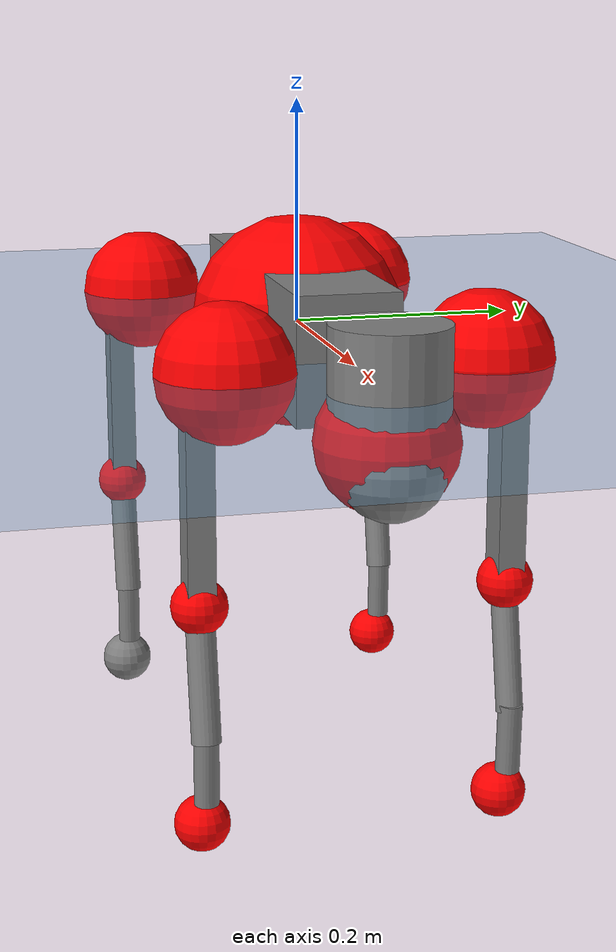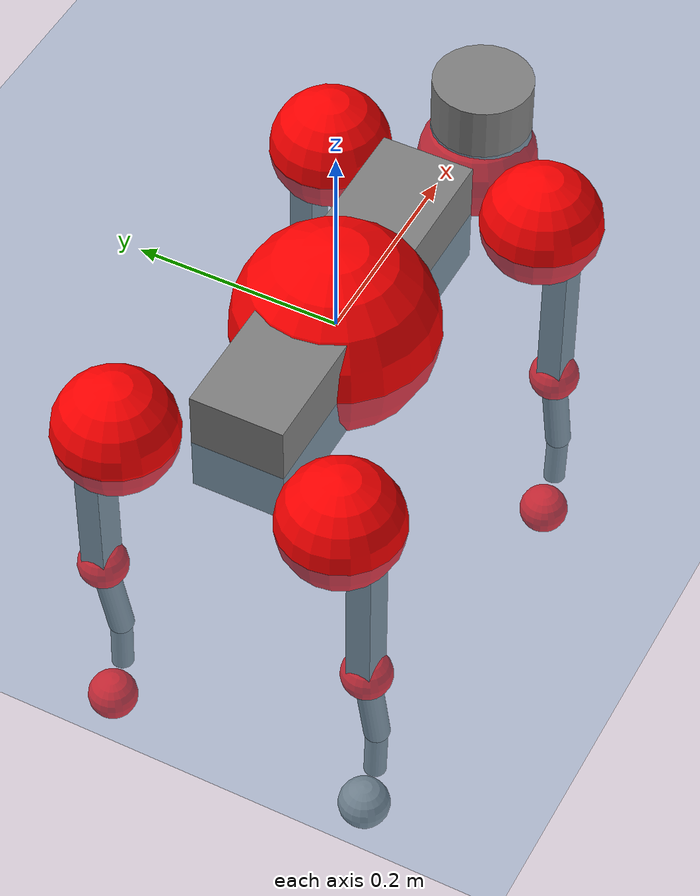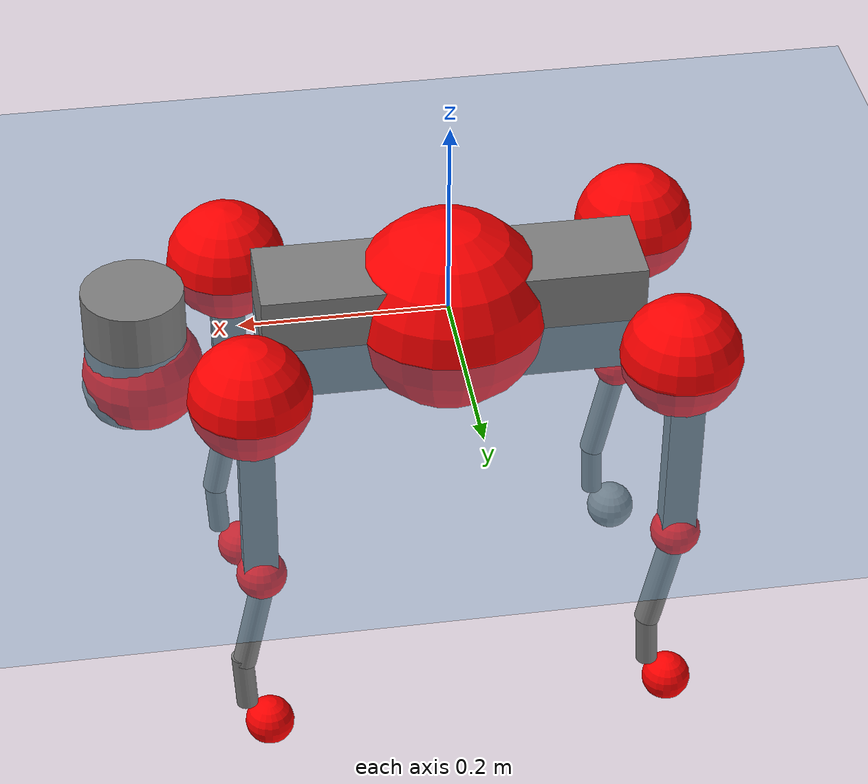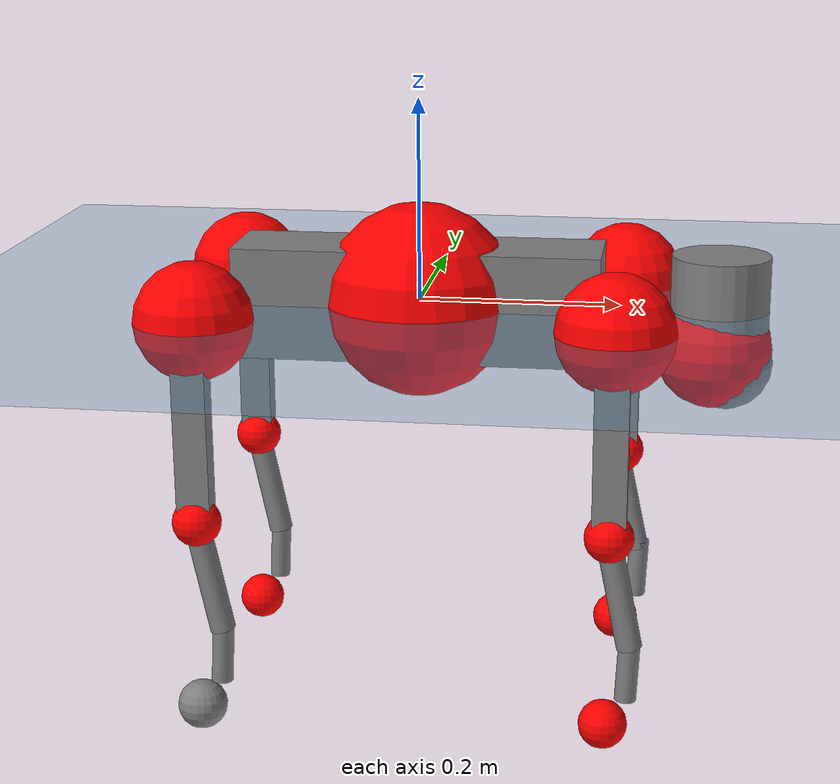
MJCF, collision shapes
<mujoco model="go2">
  <compiler angle="radian" assetdir="assets" balanceinertia="true" inertiafromgeom="false"/>

  <option timestep="0.005" density="1.2" viscosity="2e-05"/>

  <size nkey="1"/>

  <visual>
    <quality shadowsize="8192"/>
    <map shadowclip="0.5"/>
  </visual>

  <default>
    <default class="/">
      <geom contype="0" conaffinity="0" group="1" solref="-1000 -80"/>
      <site size="0.01 0.005 0.005" group="5"/>
      <general forcelimited="true" biastype="affine" gainprm="20" biasprm="0 -20 -0.5"/>
      <default class="go2">
        <joint armature="0.01" damping="0.01" frictionloss="0.2"/>
        <geom condim="1" margin="0.001"/>
        <default class="visual">
          <geom type="mesh" group="2"/>
        </default>
        <default class="collision">
          <geom group="3"/>
          <default class="foot">
            <geom size="0.022 0 0" condim="6" priority="1" friction="0.8 0.02 0.01" solimp="0.015 1 0.022"/>
          </default>
        </default>
        <default class="reward_collision_sphere">
          <geom group="5" rgba="1 0 0 1"/>
        </default>
      </default>
    </default>
  </default>

  <asset>
    <texture type="skybox" colorspace="auto" name="//unnamed_texture_0" builtin="gradient" rgb1="0.95 0.95 0.95" rgb2="0.95 0.95 0.95" width="100" height="600"/>
    <texture type="2d" colorspace="auto" name="texplane" builtin="checker" rgb1="0.345 0.575 0.748" rgb2="0.345 0.575 0.748" markrgb="1 1 1" width="512" height="512"/>
    <material name="MatPlane" class="/" texture="texplane" texuniform="true" texrepeat="2 2" specular="0.9"/>
    <material name="metal" class="/" rgba="0.9 0.95 0.95 1"/>
    <material name="black" class="/" rgba="0 0 0 1"/>
    <material name="white" class="/"/>
    <material name="gray" class="/" rgba="0.671705 0.692426 0.77427 1"/>
    <mesh name="base_0" class="/" file="base_0.obj"/>
    <mesh name="base_1" class="/" file="base_1.obj"/>
    <mesh name="base_2" class="/" file="base_2.obj"/>
    <mesh name="base_3" class="/" file="base_3.obj"/>
    <mesh name="base_4" class="/" file="base_4.obj"/>
    <mesh name="hip_0" class="/" file="hip_0.obj"/>
    <mesh name="hip_1" class="/" file="hip_1.obj"/>
    <mesh name="thigh_0" class="/" file="thigh_0.obj"/>
    <mesh name="thigh_1" class="/" file="thigh_1.obj"/>
    <mesh name="thigh_mirror_0" class="/" file="thigh_mirror_0.obj"/>
    <mesh name="thigh_mirror_1" class="/" file="thigh_mirror_1.obj"/>
    <mesh name="calf_0" class="/" file="calf_0.obj"/>
    <mesh name="calf_1" class="/" file="calf_1.obj"/>
    <mesh name="calf_mirror_0" class="/" file="calf_mirror_0.obj"/>
    <mesh name="calf_mirror_1" class="/" file="calf_mirror_1.obj"/>
    <mesh name="foot" class="/" file="foot.obj"/>
  </asset>

  <worldbody>
    <geom name="floor" class="/" size="100 100 0.125" type="plane" group="0" material="MatPlane"/>
    <light name="toplight_shadow" class="/" pos="0 0 5" dir="0.0990148 0.0990148 -0.990148" type="directional" ambient="0.04 0.04 0.04" diffuse="0.55 0.55 0.55" specular="0.12 0.12 0.12"/>
    <light name="toplight_fill" class="/" pos="0 0 5" dir="0.0990148 0.0990148 -0.990148" type="directional" castshadow="false" ambient="0.04 0.04 0.04" diffuse="0.3 0.3 0.3" specular="0.08 0.08 0.08"/>
    <body name="trunk" childclass="go2" pos="2.12198e-05 0.000634626 0.000313169" quat="1 0.000239998 -4.75722e-05 -0.00018682">
      <inertial pos="0.0229203 -0.00134909 -0.00530513" quat="-0.00362519 0.715906 -0.00146389 0.698186" mass="6.1637" diaginertia="0.127858 0.0726505 0.0156248"/>
      <joint name="//unnamed_joint_0" type="free" armature="0" damping="0" frictionloss="0"/>
      <geom name="//unnamed_geom_1" class="visual" material="black" mesh="base_0"/>
      <geom name="//unnamed_geom_2" class="visual" material="black" mesh="base_1"/>
      <geom name="//unnamed_geom_3" class="visual" material="black" mesh="base_2"/>
      <geom name="//unnamed_geom_4" class="visual" material="white" mesh="base_3"/>
      <geom name="//unnamed_geom_5" class="visual" material="gray" mesh="base_4"/>
      <geom name="trunk_1" class="collision" size="0.182117 0.045263 0.055187" type="box"/>
      <geom name="trunk_2" class="collision" size="0.0484096 0.0435687" pos="0.297246 0 0.00916938" type="cylinder"/>
      <geom name="trunk_3" class="collision" size="0.045505" pos="0.305589 0 -0.0550163"/>
      <geom name="//unnamed_geom_9" class="reward_collision_sphere" size="0.0968192"/>
      <geom name="//unnamed_geom_10" class="reward_collision_sphere" size="0.0580915" pos="0.292031 0 -0.0412622"/>
      <site name="imu" pos="-0.027986 -0.001016 0.0377459" size="0.00968192"/>
      <camera name="track" pos="0 -1.88934 0" quat="0.707107 0.707107 0 0" mode="trackcom"/>
      <camera name="ego_camera" pos="0.325406 0 0.0412622" quat="-0.5 -0.5 0.5 0.5"/>
      <body name="FL_hip" pos="0.200923 0.0441856 0.000497916" quat="1 -7.97332e-07 -1.23546e-05 -9.47253e-06">
        <inertial pos="-0.00572766 0.00202468 -3.74441e-05" quat="0.490509 0.500151 0.505287 0.50392" mass="0.616279" diaginertia="0.00109768 0.000455704 0.000313669"/>
        <joint name="FL_hip_joint" pos="0 0 0" axis="1 -0.0006995 0.000331652" stiffness="0.0105417" range="-1.02852 1.03929" armature="0.00974719" damping="0.00941265" frictionloss="0.191849"/>
        <geom name="//unnamed_geom_11" class="visual" material="metal" mesh="hip_0"/>
        <geom name="//unnamed_geom_12" class="visual" material="gray" mesh="hip_1"/>
        <geom name="//unnamed_geom_13" class="collision" size="0.0445368 0.0193638" pos="0 0.0755737 0" quat="0.707107 0.707107 0 0" type="cylinder"/>
        <geom name="//unnamed_geom_14" class="reward_collision_sphere" size="0.0580915" pos="0 0.066127 0"/>
        <body name="FL_thigh" pos="-0.000897073 0.0891101 0.000322076" quat="1 0.000472065 -0.000536033 0.000133388">
          <inertial pos="-0.00386817 -0.019335 -0.0302297" quat="0.828303 0.0834033 -0.0173997 0.553764" mass="1.03553" diaginertia="0.00730577 0.0044757 0.000571651"/>
          <joint name="FL_thigh_joint" pos="0 0 0" axis="0.00348483 0.999989 -0.00324203" stiffness="0.00288851" range="-1.55601 3.4751" armature="0.0103717" damping="0.00820979" frictionloss="0.202603"/>
          <geom name="//unnamed_geom_15" class="visual" material="metal" mesh="thigh_0"/>
          <geom name="//unnamed_geom_16" class="visual" material="gray" mesh="thigh_1"/>
          <geom name="//unnamed_geom_17" class="collision" size="0.103112 0.0118604 0.0164593" pos="0 0 -0.0976539" quat="0.707107 0 0.707107 0" type="box"/>
          <body name="FL_calf" pos="-0.000888872 0.000335838 -0.195644" quat="1 -7.09723e-07 -3.44305e-06 4.16673e-06">
            <inertial pos="0.00607217 0.000292145 -0.129208" quat="0.712392 0.000547499 -0.00586486 0.701757" mass="0.219739" diaginertia="0.00185848 0.00112455 3.46615e-05"/>
            <joint name="FL_calf_joint" pos="0 0 0" axis="-3.77346e-05 1 0.000165578" stiffness="0.00078269" range="-2.69468 -0.835143" armature="0.0101675" damping="0.00173951" frictionloss="0.189602"/>
            <geom name="//unnamed_geom_18" class="visual" material="gray" mesh="calf_0"/>
            <geom name="//unnamed_geom_19" class="visual" material="black" mesh="calf_1"/>
            <geom name="FL_calf0" class="collision" size="0.0116183 0.0580915" pos="0.00834374 0 -0.0550163" quat="0.994493 0 -0.104807 0" type="cylinder"/>
            <geom name="//unnamed_geom_21" class="collision" size="0.0106501 0.0314662" pos="0.0208594 0 -0.135707" quat="0.999688 0 0.0249974 0" type="cylinder"/>
            <geom name="//unnamed_geom_22" class="visual" pos="0 0 -0.195308" quat="1 0 0 0" material="black" mesh="foot"/>
            <geom name="FL_foot" class="foot" size="0.0165433" pos="-0.00208594 0 -0.195308"/>
            <geom name="//unnamed_geom_24" class="reward_collision_sphere" size="0.0242048"/>
            <geom name="//unnamed_geom_25" class="reward_collision_sphere" size="0.0242048" pos="-0.00208594 0 -0.195308"/>
            <site name="FL_foot" class="foot" pos="-0.00208594 0 -0.195308" size="0.00968192"/>
          </body>
        </body>
      </body>
      <body name="FR_hip" pos="0.200847 -0.0421639 -0.000540422" quat="1 0.000171358 -0.000103733 3.8257e-06">
        <inertial pos="-0.00590503 -0.00237986 -0.000179948" quat="0.499184 0.504417 0.496831 0.499537" mass="0.619767" diaginertia="0.00109566 0.000448681 0.000308518"/>
        <joint name="FR_hip_joint" pos="0 0 0" axis="0.999971 -0.00722222 -0.00235749" range="-1.04076 1.0564" armature="0.0101928" damping="0.018429" frictionloss="0.192345"/>
        <geom name="//unnamed_geom_26" class="visual" pos="0 2.41608e-10 1.03631e-08" quat="4.63268e-05 1 0 0" material="metal" mesh="hip_0"/>
        <geom name="//unnamed_geom_27" class="visual" pos="0 3.91675e-10 -2.56318e-08" quat="4.63268e-05 1 0 0" material="gray" mesh="hip_1"/>
        <geom name="//unnamed_geom_28" class="collision" size="0.0445368 0.0193638" pos="0 -0.0755737 0" quat="0.707107 0.707107 0 0" type="cylinder"/>
        <geom name="//unnamed_geom_29" class="reward_collision_sphere" size="0.0580915" pos="0 -0.066127 0"/>
        <body name="FR_thigh" pos="-0.000215527 -0.0898233 -0.000346529" quat="1 -2.77073e-05 -6.27474e-05 -0.000102652">
          <inertial pos="-0.00500045 0.02191 -0.028866" quat="0.55195 -0.0175128 0.0860888 0.829236" mass="1.04512" diaginertia="0.00741451 0.00439995 0.000570311"/>
          <joint name="FR_thigh_joint" pos="0 0 0" axis="6.07229e-07 -1 3.72092e-06" stiffness="0.00717558" range="-3.4853 1.56227" armature="0.00938075" damping="0.0130927" frictionloss="0.201538"/>
          <geom name="//unnamed_geom_30" class="visual" material="metal" mesh="thigh_mirror_0"/>
          <geom name="//unnamed_geom_31" class="visual" material="gray" mesh="thigh_mirror_1"/>
          <geom name="//unnamed_geom_32" class="collision" size="0.103112 0.0118604 0.0164593" pos="0 0 -0.0976539" quat="0.707107 0 0.707107 0" type="box"/>
          <body name="FR_calf" pos="7.6624e-05 0.000240687 -0.194259" quat="1 -6.7729e-06 -0.000155844 9.88465e-05">
            <inertial pos="0.00731742 8.99647e-05 -0.129693" quat="0.704986 -0.00778404 0.00308372 0.709172" mass="0.223028" diaginertia="0.0018893 0.00111437 3.5435e-05"/>
            <joint name="FR_calf_joint" pos="0 0 0" axis="0.000112046 -1 0.000402782" range="0.831644 2.72063" armature="0.00942601" damping="0.00600054" frictionloss="0.200051"/>
            <geom name="//unnamed_geom_33" class="visual" material="gray" mesh="calf_mirror_0"/>
            <geom name="//unnamed_geom_34" class="visual" material="black" mesh="calf_mirror_1"/>
            <geom name="FR_calf0" class="collision" size="0.0125865 0.0580915" pos="0.0104297 0 -0.0550163" quat="0.995004 0 -0.0998334 0" type="cylinder"/>
            <geom name="//unnamed_geom_36" class="collision" size="0.0106501 0.0314662" pos="0.0208594 0 -0.135707" quat="0.999688 0 0.0249974 0" type="cylinder"/>
            <geom name="//unnamed_geom_37" class="visual" pos="0 0 -0.195308" quat="1 0 0 0" material="black" mesh="foot"/>
            <geom name="FR_foot" class="foot" size="0.0208376" pos="-0.00208594 0 -0.195308"/>
            <geom name="//unnamed_geom_39" class="reward_collision_sphere" size="0.0242048"/>
            <geom name="//unnamed_geom_40" class="reward_collision_sphere" size="0.0242048" pos="-0.00208594 0 -0.195308"/>
            <site name="FR_foot" class="foot" pos="-0.00208594 0 -0.195308" size="0.00968192"/>
          </body>
        </body>
      </body>
      <body name="RL_hip" pos="-0.201622 0.0428932 0.00175087" quat="1 -3.64531e-05 8.27558e-05 0.000545312">
        <inertial pos="0.00596745 0.00163126 -0.000767768" quat="0.504925 0.498846 0.496452 0.499739" mass="0.608947" diaginertia="0.00109516 0.000457958 0.00031039"/>
        <joint name="RL_hip_joint" pos="0 0 0" axis="-0.999832 0.000586833 0.0183312" stiffness="0.00496533" range="-1.03943 1.06264" armature="0.00954172" damping="0.0152153" frictionloss="0.192145"/>
        <geom name="//unnamed_geom_41" class="visual" pos="-1.09792e-09 0 -2.15218e-07" quat="4.63268e-05 0 1 0" material="metal" mesh="hip_0"/>
        <geom name="//unnamed_geom_42" class="visual" pos="-1.77986e-09 0 -1.90867e-07" quat="4.63268e-05 0 1 0" material="gray" mesh="hip_1"/>
        <geom name="//unnamed_geom_43" class="collision" size="0.0445368 0.0193638" pos="0 0.0755737 0" quat="0.707107 0.707107 0 0" type="cylinder"/>
        <geom name="//unnamed_geom_44" class="reward_collision_sphere" size="0.0580915" pos="0 0.066127 0"/>
        <body name="RL_thigh" pos="-0.000408281 0.0911851 0.000397422" quat="1 -0.000284465 -0.000292614 0.000209771">
          <inertial pos="-0.00361872 -0.0190461 -0.0307922" quat="0.83002 0.0844372 -0.0199562 0.550944" mass="1.02705" diaginertia="0.00741814 0.0043382 0.000573143"/>
          <joint name="RL_thigh_joint" pos="0 0 0" axis="0.00495455 0.999987 -0.00147865" stiffness="0.00135401" range="-0.532141 4.54423" armature="0.00935687" damping="0.0075866" frictionloss="0.20269"/>
          <geom name="//unnamed_geom_45" class="visual" material="metal" mesh="thigh_0"/>
          <geom name="//unnamed_geom_46" class="visual" material="gray" mesh="thigh_1"/>
          <geom name="//unnamed_geom_47" class="collision" size="0.103112 0.0118604 0.0164593" pos="0 0 -0.0976539" quat="0.707107 0 0.707107 0" type="box"/>
          <body name="RL_calf" pos="0.000238257 -0.000869859 -0.195287" quat="1 -0.000227976 -0.000197926 -0.000195999">
            <inertial pos="0.00620493 -0.00015964 -0.129724" quat="0.710791 0.00183478 -0.00496093 0.703383" mass="0.221245" diaginertia="0.00186075 0.00111289 3.47097e-05"/>
            <joint name="RL_calf_joint" pos="0 0 0" axis="-0.00044218 0.999983 -0.00585347" stiffness="0.00402428" range="-2.69497 -0.833291" armature="0.0104109" damping="0" frictionloss="0.200955"/>
            <geom name="//unnamed_geom_48" class="visual" material="gray" mesh="calf_0"/>
            <geom name="//unnamed_geom_49" class="visual" material="black" mesh="calf_1"/>
            <geom name="RL_calf0" class="collision" size="0.0125865 0.0580915" pos="0.0104297 0 -0.0550163" quat="0.995004 0 -0.0998334 0" type="cylinder"/>
            <geom name="//unnamed_geom_51" class="collision" size="0.0106501 0.0314662" pos="0.0208594 0 -0.135707" quat="0.999688 0 0.0249974 0" type="cylinder"/>
            <geom name="//unnamed_geom_52" class="visual" pos="0 0 -0.195308" quat="1 0 0 0" material="black" mesh="foot"/>
            <geom name="RL_foot" class="foot" size="0.0191784" pos="-0.00208594 0 -0.195308"/>
            <geom name="//unnamed_geom_54" class="reward_collision_sphere" size="0.0242048"/>
            <geom name="//unnamed_geom_55" class="reward_collision_sphere" size="0.0242048" pos="-0.00208594 0 -0.195308"/>
            <site name="RL_foot" class="foot" pos="-0.00208594 0 -0.195308" size="0.00968192"/>
          </body>
        </body>
      </body>
      <body name="RR_hip" pos="-0.202611 -0.0450403 -0.00107667" quat="1 0.000207743 -0.000632334 0.000509302">
        <inertial pos="0.00542504 -0.00166376 9.59529e-05" quat="0.49972 0.496806 0.497743 0.505684" mass="0.622235" diaginertia="0.00110283 0.000452056 0.000321543"/>
        <joint name="RR_hip_joint" pos="0 0 0" axis="-1 -0.000328308 0.000653903" range="-1.05537 1.03489" armature="0.0101164" damping="0.00568897" frictionloss="0.185683"/>
        <geom name="//unnamed_geom_56" class="visual" pos="1.09452e-09 2.41608e-10 -2.25581e-07" quat="2.14617e-09 4.63268e-05 4.63268e-05 -1" material="metal" mesh="hip_0"/>
        <geom name="//unnamed_geom_57" class="visual" pos="1.78828e-09 3.91675e-10 -1.65236e-07" quat="2.14617e-09 4.63268e-05 4.63268e-05 -1" material="gray" mesh="hip_1"/>
        <geom name="//unnamed_geom_58" class="collision" size="0.0445368 0.0193638" pos="0 -0.0755737 0" quat="0.707107 0.707107 0 0" type="cylinder"/>
        <geom name="//unnamed_geom_59" class="reward_collision_sphere" size="0.0580915" pos="0 -0.066127 0"/>
        <body name="RR_thigh" pos="0.00124895 -0.0909118 -5.8487e-05" quat="1 0.000353233 -2.94024e-05 -0.000430033">
          <inertial pos="-0.003672 0.0213801 -0.029771" quat="0.549913 -0.0211403 0.0836672 0.830752" mass="1.04532" diaginertia="0.00733312 0.00441807 0.00057618"/>
          <joint name="RR_thigh_joint" pos="0 0 0" axis="0.00790684 -0.999963 -0.00347051" range="-4.54347 0.55582" armature="0.00902488" damping="0.0121874" frictionloss="0.194111"/>
          <geom name="//unnamed_geom_60" class="visual" material="metal" mesh="thigh_mirror_0"/>
          <geom name="//unnamed_geom_61" class="visual" material="gray" mesh="thigh_mirror_1"/>
          <geom name="//unnamed_geom_62" class="collision" size="0.103112 0.0118604 0.0164593" pos="0 0 -0.0976539" quat="0.707107 0 0.707107 0" type="box"/>
          <body name="RR_calf" pos="0.000548564 -0.000723311 -0.195606" quat="1 6.77178e-05 6.35532e-05 -0.000313947">
            <inertial pos="0.00735967 0.00103436 -0.129691" quat="0.703508 -0.00449187 0.00145071 0.710672" mass="0.217051" diaginertia="0.00183329 0.00108667 3.43104e-05"/>
            <joint name="RR_calf_joint" pos="0 0 0" axis="-0.00431111 -0.999982 -0.00420769" stiffness="0.00125778" range="0.850735 2.7078" armature="0.00945416" damping="0.00907588" frictionloss="0.184432"/>
            <geom name="//unnamed_geom_63" class="visual" material="gray" mesh="calf_mirror_0"/>
            <geom name="//unnamed_geom_64" class="visual" material="black" mesh="calf_mirror_1"/>
            <geom name="RR_calf0" class="collision" size="0.0125865 0.0580915" pos="0.0104297 0 -0.0550163" quat="0.995004 0 -0.0998334 0" type="cylinder"/>
            <geom name="//unnamed_geom_66" class="collision" size="0.0106501 0.0314662" pos="0.0208594 0 -0.135707" quat="0.999688 0 0.0249974 0" type="cylinder"/>
            <geom name="//unnamed_geom_67" class="visual" pos="0 0 -0.195308" quat="1 0 0 0" material="black" mesh="foot"/>
            <geom name="RR_foot" class="foot" size="0.0247283" pos="-0.00208594 0 -0.195308"/>
            <geom name="//unnamed_geom_69" class="reward_collision_sphere" size="0.0242048"/>
            <geom name="//unnamed_geom_70" class="reward_collision_sphere" size="0.0242048" pos="-0.00208594 0 -0.195308"/>
            <site name="RR_foot" class="foot" pos="-0.00208594 0 -0.195308" size="0.00968192"/>
          </body>
        </body>
      </body>
    </body>
  </worldbody>

  <contact>
    <pair class="/" geom1="floor" geom2="FL_foot" name="//unnamed_contact_0"/>
    <pair class="/" geom1="floor" geom2="FR_foot" name="//unnamed_contact_1"/>
    <pair class="/" geom1="floor" geom2="RL_foot" name="//unnamed_contact_2"/>
    <pair class="/" geom1="floor" geom2="RR_foot" name="//unnamed_contact_3"/>
  </contact>

  <actuator>
    <general name="FL_hip" class="/" joint="FL_hip_joint" forcerange="-22.0523 22.0523" gainprm="19.3715" biasprm="0 -19.3715 -0.481241"/>
    <general name="FL_thigh" class="/" joint="FL_thigh_joint" forcerange="-22.7626 22.7626" gainprm="19.3715" biasprm="0 -19.3715 -0.481241"/>
    <general name="FL_calf" class="/" joint="FL_calf_joint" forcerange="-43.3814 43.3814" gainprm="19.3715" biasprm="0 -19.3715 -0.481241"/>
    <general name="FR_hip" class="/" joint="FR_hip_joint" forcerange="-23.7083 23.7083" gainprm="19.3715" biasprm="0 -19.3715 -0.481241"/>
    <general name="FR_thigh" class="/" joint="FR_thigh_joint" forcerange="-23.1667 23.1667" gainprm="19.3715" biasprm="0 -19.3715 -0.481241"/>
    <general name="FR_calf" class="/" joint="FR_calf_joint" forcerange="-44.2608 44.2608" gainprm="19.3715" biasprm="0 -19.3715 -0.481241"/>
    <general name="RL_hip" class="/" joint="RL_hip_joint" forcerange="-23.3689 23.3689" gainprm="19.3715" biasprm="0 -19.3715 -0.481241"/>
    <general name="RL_thigh" class="/" joint="RL_thigh_joint" forcerange="-23.1836 23.1836" gainprm="19.3715" biasprm="0 -19.3715 -0.481241"/>
    <general name="RL_calf" class="/" joint="RL_calf_joint" forcerange="-43.2598 43.2598" gainprm="19.3715" biasprm="0 -19.3715 -0.481241"/>
    <general name="RR_hip" class="/" joint="RR_hip_joint" forcerange="-23.7931 23.7931" gainprm="19.3715" biasprm="0 -19.3715 -0.481241"/>
    <general name="RR_thigh" class="/" joint="RR_thigh_joint" forcerange="-22.3922 22.3922" gainprm="19.3715" biasprm="0 -19.3715 -0.481241"/>
    <general name="RR_calf" class="/" joint="RR_calf_joint" forcerange="-45.4701 45.4701" gainprm="19.3715" biasprm="0 -19.3715 -0.481241"/>
  </actuator>

  <sensor>
    <gyro site="imu" name="imu_angular_velocity"/>
    <velocimeter site="imu" name="imu_linear_velocity"/>
    <framelinvel objtype="site" objname="FL_foot" name="FL_foot_global_linear_velocity"/>
    <framelinvel objtype="site" objname="FR_foot" name="FR_foot_global_linear_velocity"/>
    <framelinvel objtype="site" objname="RL_foot" name="RL_foot_global_linear_velocity"/>
    <framelinvel objtype="site" objname="RR_foot" name="RR_foot_global_linear_velocity"/>
  </sensor>

  <keyframe>
    <key name="home" qpos="0 0 0.325 1 0 0 0 0.1 0.8 -1.5 -0.1 -0.8 1.5 -0.1 0.8 -1.5 0.1 -0.8 1.5"/>
  </keyframe>
</mujoco>
